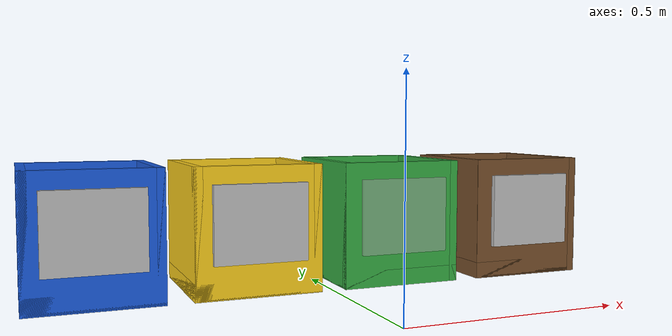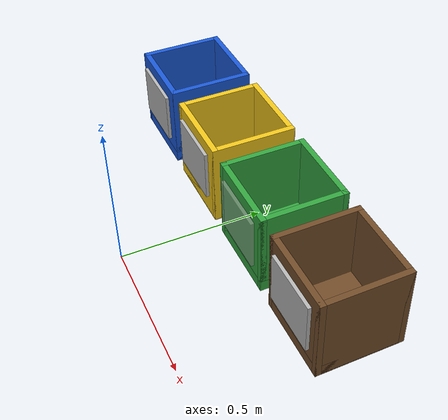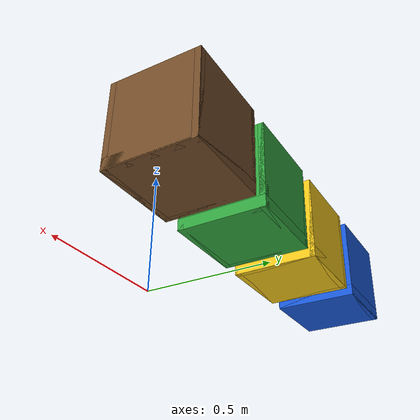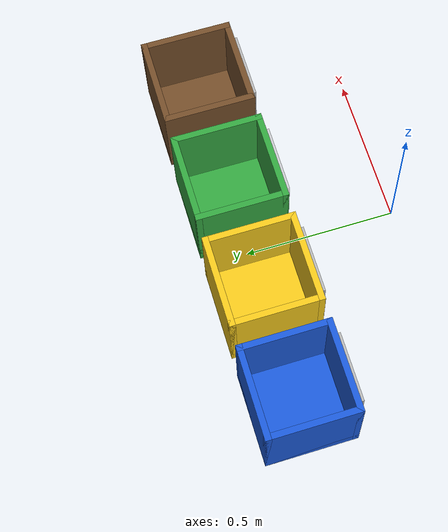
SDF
<?xml version="1.0"?>
<sdf version="1.6">
  <model name="recycle_bins">
    <static>true</static>
    <link name="link">
      <visual name="plastic_floor_v"><pose>-0.540 0.500 0.020 0 0 0</pose>
        <geometry><box><size>0.300 0.300 0.040</size></box></geometry>
        <material><ambient>0.1 0.35 0.85 1</ambient><diffuse>0.1 0.35 0.85 1</diffuse>
                  <specular>0.05 0.05 0.05 1</specular></material></visual>
      <collision name="plastic_floor_c"><pose>-0.540 0.500 0.020 0 0 0</pose>
        <geometry><box><size>0.300 0.300 0.040</size></box></geometry></collision>
      <visual name="plastic_n_v"><pose>-0.540 0.640 0.150 0 0 0</pose>
        <geometry><box><size>0.300 0.020 0.300</size></box></geometry>
        <material><ambient>0.1 0.35 0.85 1</ambient><diffuse>0.1 0.35 0.85 1</diffuse>
                  <specular>0.05 0.05 0.05 1</specular></material></visual>
      <collision name="plastic_n_c"><pose>-0.540 0.640 0.150 0 0 0</pose>
        <geometry><box><size>0.300 0.020 0.300</size></box></geometry></collision>
      <visual name="plastic_s_v"><pose>-0.540 0.360 0.150 0 0 0</pose>
        <geometry><box><size>0.300 0.020 0.300</size></box></geometry>
        <material><ambient>0.1 0.35 0.85 1</ambient><diffuse>0.1 0.35 0.85 1</diffuse>
                  <specular>0.05 0.05 0.05 1</specular></material></visual>
      <collision name="plastic_s_c"><pose>-0.540 0.360 0.150 0 0 0</pose>
        <geometry><box><size>0.300 0.020 0.300</size></box></geometry></collision>
      <visual name="plastic_e_v"><pose>-0.400 0.500 0.150 0 0 0</pose>
        <geometry><box><size>0.020 0.300 0.300</size></box></geometry>
        <material><ambient>0.1 0.35 0.85 1</ambient><diffuse>0.1 0.35 0.85 1</diffuse>
                  <specular>0.05 0.05 0.05 1</specular></material></visual>
      <collision name="plastic_e_c"><pose>-0.400 0.500 0.150 0 0 0</pose>
        <geometry><box><size>0.020 0.300 0.300</size></box></geometry></collision>
      <visual name="plastic_w_v"><pose>-0.680 0.500 0.150 0 0 0</pose>
        <geometry><box><size>0.020 0.300 0.300</size></box></geometry>
        <material><ambient>0.1 0.35 0.85 1</ambient><diffuse>0.1 0.35 0.85 1</diffuse>
                  <specular>0.05 0.05 0.05 1</specular></material></visual>
      <collision name="plastic_w_c"><pose>-0.680 0.500 0.150 0 0 0</pose>
        <geometry><box><size>0.020 0.300 0.300</size></box></geometry></collision>
      <visual name="plastic_label_v"><pose>-0.540 0.342 0.170 0 0 0</pose>
        <geometry><box><size>0.22 0.012 0.18</size></box></geometry>
        <material><script>
          <uri>model://recycle_bins/materials/scripts</uri>
          <uri>model://recycle_bins/materials/textures</uri>
          <name>MRF/Label_plastic</name></script></material></visual>
      <visual name="metal_floor_v"><pose>-0.180 0.500 0.020 0 0 0</pose>
        <geometry><box><size>0.300 0.300 0.040</size></box></geometry>
        <material><ambient>0.95 0.78 0.1 1</ambient><diffuse>0.95 0.78 0.1 1</diffuse>
                  <specular>0.05 0.05 0.05 1</specular></material></visual>
      <collision name="metal_floor_c"><pose>-0.180 0.500 0.020 0 0 0</pose>
        <geometry><box><size>0.300 0.300 0.040</size></box></geometry></collision>
      <visual name="metal_n_v"><pose>-0.180 0.640 0.150 0 0 0</pose>
        <geometry><box><size>0.300 0.020 0.300</size></box></geometry>
        <material><ambient>0.95 0.78 0.1 1</ambient><diffuse>0.95 0.78 0.1 1</diffuse>
                  <specular>0.05 0.05 0.05 1</specular></material></visual>
      <collision name="metal_n_c"><pose>-0.180 0.640 0.150 0 0 0</pose>
        <geometry><box><size>0.300 0.020 0.300</size></box></geometry></collision>
      <visual name="metal_s_v"><pose>-0.180 0.360 0.150 0 0 0</pose>
        <geometry><box><size>0.300 0.020 0.300</size></box></geometry>
        <material><ambient>0.95 0.78 0.1 1</ambient><diffuse>0.95 0.78 0.1 1</diffuse>
                  <specular>0.05 0.05 0.05 1</specular></material></visual>
      <collision name="metal_s_c"><pose>-0.180 0.360 0.150 0 0 0</pose>
        <geometry><box><size>0.300 0.020 0.300</size></box></geometry></collision>
      <visual name="metal_e_v"><pose>-0.040 0.500 0.150 0 0 0</pose>
        <geometry><box><size>0.020 0.300 0.300</size></box></geometry>
        <material><ambient>0.95 0.78 0.1 1</ambient><diffuse>0.95 0.78 0.1 1</diffuse>
                  <specular>0.05 0.05 0.05 1</specular></material></visual>
      <collision name="metal_e_c"><pose>-0.040 0.500 0.150 0 0 0</pose>
        <geometry><box><size>0.020 0.300 0.300</size></box></geometry></collision>
      <visual name="metal_w_v"><pose>-0.320 0.500 0.150 0 0 0</pose>
        <geometry><box><size>0.020 0.300 0.300</size></box></geometry>
        <material><ambient>0.95 0.78 0.1 1</ambient><diffuse>0.95 0.78 0.1 1</diffuse>
                  <specular>0.05 0.05 0.05 1</specular></material></visual>
      <collision name="metal_w_c"><pose>-0.320 0.500 0.150 0 0 0</pose>
        <geometry><box><size>0.020 0.300 0.300</size></box></geometry></collision>
      <visual name="metal_label_v"><pose>-0.180 0.342 0.170 0 0 0</pose>
        <geometry><box><size>0.22 0.012 0.18</size></box></geometry>
        <material><script>
          <uri>model://recycle_bins/materials/scripts</uri>
          <uri>model://recycle_bins/materials/textures</uri>
          <name>MRF/Label_metal</name></script></material></visual>
      <visual name="glass_floor_v"><pose>0.180 0.500 0.020 0 0 0</pose>
        <geometry><box><size>0.300 0.300 0.040</size></box></geometry>
        <material><ambient>0.2 0.65 0.25 1</ambient><diffuse>0.2 0.65 0.25 1</diffuse>
                  <specular>0.05 0.05 0.05 1</specular></material></visual>
      <collision name="glass_floor_c"><pose>0.180 0.500 0.020 0 0 0</pose>
        <geometry><box><size>0.300 0.300 0.040</size></box></geometry></collision>
      <visual name="glass_n_v"><pose>0.180 0.640 0.150 0 0 0</pose>
        <geometry><box><size>0.300 0.020 0.300</size></box></geometry>
        <material><ambient>0.2 0.65 0.25 1</ambient><diffuse>0.2 0.65 0.25 1</diffuse>
                  <specular>0.05 0.05 0.05 1</specular></material></visual>
      <collision name="glass_n_c"><pose>0.180 0.640 0.150 0 0 0</pose>
        <geometry><box><size>0.300 0.020 0.300</size></box></geometry></collision>
      <visual name="glass_s_v"><pose>0.180 0.360 0.150 0 0 0</pose>
        <geometry><box><size>0.300 0.020 0.300</size></box></geometry>
        <material><ambient>0.2 0.65 0.25 1</ambient><diffuse>0.2 0.65 0.25 1</diffuse>
                  <specular>0.05 0.05 0.05 1</specular></material></visual>
      <collision name="glass_s_c"><pose>0.180 0.360 0.150 0 0 0</pose>
        <geometry><box><size>0.300 0.020 0.300</size></box></geometry></collision>
      <visual name="glass_e_v"><pose>0.320 0.500 0.150 0 0 0</pose>
        <geometry><box><size>0.020 0.300 0.300</size></box></geometry>
        <material><ambient>0.2 0.65 0.25 1</ambient><diffuse>0.2 0.65 0.25 1</diffuse>
                  <specular>0.05 0.05 0.05 1</specular></material></visual>
      <collision name="glass_e_c"><pose>0.320 0.500 0.150 0 0 0</pose>
        <geometry><box><size>0.020 0.300 0.300</size></box></geometry></collision>
      <visual name="glass_w_v"><pose>0.040 0.500 0.150 0 0 0</pose>
        <geometry><box><size>0.020 0.300 0.300</size></box></geometry>
        <material><ambient>0.2 0.65 0.25 1</ambient><diffuse>0.2 0.65 0.25 1</diffuse>
                  <specular>0.05 0.05 0.05 1</specular></material></visual>
      <collision name="glass_w_c"><pose>0.040 0.500 0.150 0 0 0</pose>
        <geometry><box><size>0.020 0.300 0.300</size></box></geometry></collision>
      <visual name="glass_label_v"><pose>0.180 0.342 0.170 0 0 0</pose>
        <geometry><box><size>0.22 0.012 0.18</size></box></geometry>
        <material><script>
          <uri>model://recycle_bins/materials/scripts</uri>
          <uri>model://recycle_bins/materials/textures</uri>
          <name>MRF/Label_glass</name></script></material></visual>
      <visual name="paper_floor_v"><pose>0.540 0.500 0.020 0 0 0</pose>
        <geometry><box><size>0.300 0.300 0.040</size></box></geometry>
        <material><ambient>0.45 0.3 0.16 1</ambient><diffuse>0.45 0.3 0.16 1</diffuse>
                  <specular>0.05 0.05 0.05 1</specular></material></visual>
      <collision name="paper_floor_c"><pose>0.540 0.500 0.020 0 0 0</pose>
        <geometry><box><size>0.300 0.300 0.040</size></box></geometry></collision>
      <visual name="paper_n_v"><pose>0.540 0.640 0.150 0 0 0</pose>
        <geometry><box><size>0.300 0.020 0.300</size></box></geometry>
        <material><ambient>0.45 0.3 0.16 1</ambient><diffuse>0.45 0.3 0.16 1</diffuse>
                  <specular>0.05 0.05 0.05 1</specular></material></visual>
      <collision name="paper_n_c"><pose>0.540 0.640 0.150 0 0 0</pose>
        <geometry><box><size>0.300 0.020 0.300</size></box></geometry></collision>
      <visual name="paper_s_v"><pose>0.540 0.360 0.150 0 0 0</pose>
        <geometry><box><size>0.300 0.020 0.300</size></box></geometry>
        <material><ambient>0.45 0.3 0.16 1</ambient><diffuse>0.45 0.3 0.16 1</diffuse>
                  <specular>0.05 0.05 0.05 1</specular></material></visual>
      <collision name="paper_s_c"><pose>0.540 0.360 0.150 0 0 0</pose>
        <geometry><box><size>0.300 0.020 0.300</size></box></geometry></collision>
      <visual name="paper_e_v"><pose>0.680 0.500 0.150 0 0 0</pose>
        <geometry><box><size>0.020 0.300 0.300</size></box></geometry>
        <material><ambient>0.45 0.3 0.16 1</ambient><diffuse>0.45 0.3 0.16 1</diffuse>
                  <specular>0.05 0.05 0.05 1</specular></material></visual>
      <collision name="paper_e_c"><pose>0.680 0.500 0.150 0 0 0</pose>
        <geometry><box><size>0.020 0.300 0.300</size></box></geometry></collision>
      <visual name="paper_w_v"><pose>0.400 0.500 0.150 0 0 0</pose>
        <geometry><box><size>0.020 0.300 0.300</size></box></geometry>
        <material><ambient>0.45 0.3 0.16 1</ambient><diffuse>0.45 0.3 0.16 1</diffuse>
                  <specular>0.05 0.05 0.05 1</specular></material></visual>
      <collision name="paper_w_c"><pose>0.400 0.500 0.150 0 0 0</pose>
        <geometry><box><size>0.020 0.300 0.300</size></box></geometry></collision>
      <visual name="paper_label_v"><pose>0.540 0.342 0.170 0 0 0</pose>
        <geometry><box><size>0.22 0.012 0.18</size></box></geometry>
        <material><script>
          <uri>model://recycle_bins/materials/scripts</uri>
          <uri>model://recycle_bins/materials/textures</uri>
          <name>MRF/Label_paper</name></script></material></visual>
    </link>
  </model>
</sdf>
